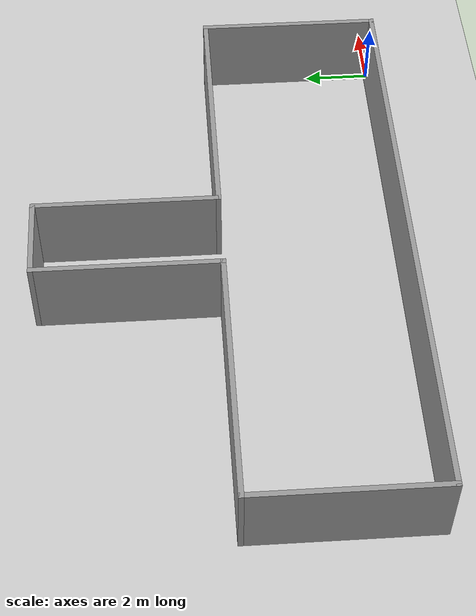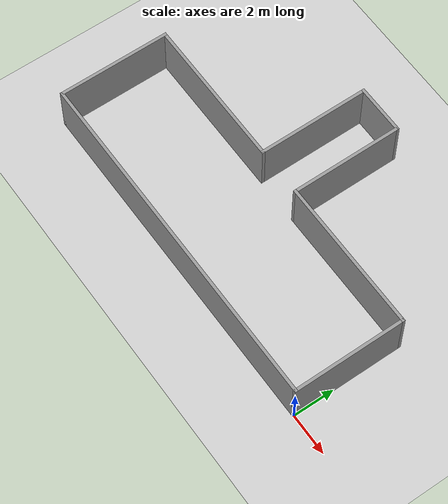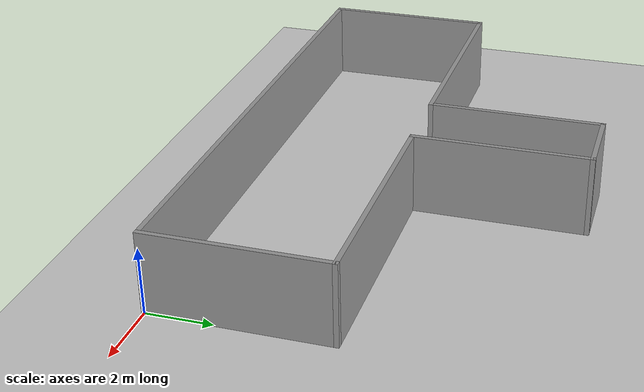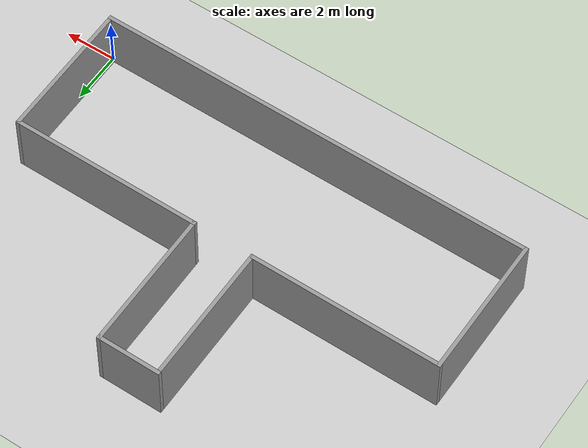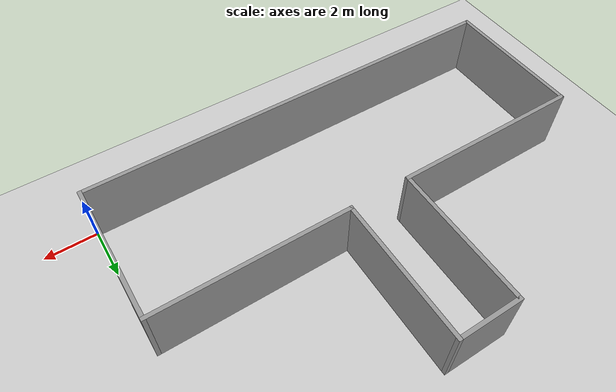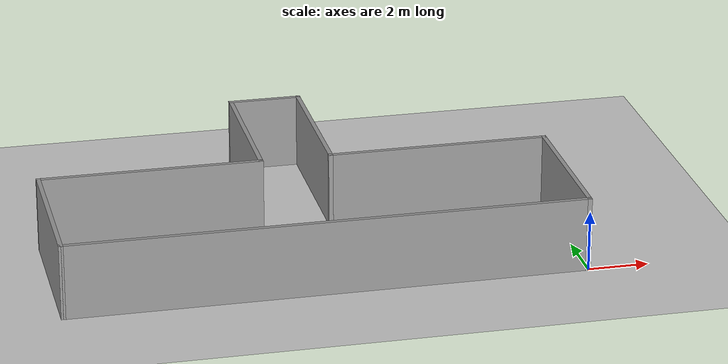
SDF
<sdf version="1.6">
 <world name="default">
  <light name="sun" type="directional">
   <pose>0 0 10 0 -0 0</pose>
   <diffuse>0.8 0.8 0.8 1</diffuse>
   <specular>0.2 0.2 0.2 1</specular>
   <attenuation>
    <range>1000</range>
    <constant>0.9</constant>
    <linear>0.01</linear>
    <quadratic>0.001</quadratic>
   </attenuation>
   <direction>-0.5 0.1 -0.9</direction>
  </light>
  <model name="ground_plane">
   <static>1</static>
   <link name="link">
    <collision name="collision">
     <geometry><plane><normal>0 0 1</normal><size>100 100</size></plane></geometry>
     <surface>
      <contact><collide_bitmask>65535</collide_bitmask></contact>
      <friction><ode><mu>100</mu><mu2>50</mu2></ode></friction>
     </surface>
    </collision>
    <visual name="visual">
     <cast_shadows>0</cast_shadows>
     <geometry><plane><normal>0 0 1</normal><size>100 100</size></plane></geometry>
     <material>
      <script><uri>file://media/materials/scripts/gazebo.material</uri><name>Gazebo/Grey</name></script>
     </material>
    </visual>
   </link>
  </model>
  <gravity>0 0 -9.8</gravity>
  <magnetic_field>6e-06 2.3e-05 -4.2e-05</magnetic_field>
  <atmosphere type="adiabatic"/>
  <physics name="default_physics" default="0" type="ode">
   <max_step_size>0.001</max_step_size>
   <real_time_factor>1</real_time_factor>
   <real_time_update_rate>1000</real_time_update_rate>
  </physics>
  <scene><ambient>0.4 0.4 0.4 1</ambient><background>0.7 0.7 0.7 1</background><shadows>1</shadows></scene>
  <audio><device>default</device></audio>
  <spherical_coordinates>
   <surface_model>EARTH_WGS84</surface_model>
   <latitude_deg>0</latitude_deg>
   <longitude_deg>0</longitude_deg>
   <elevation>0</elevation>
   <heading_deg>0</heading_deg>
  </spherical_coordinates>
  <model name="b4room_model.world">
   <pose>-8.54331 5.36486 0 0 -0 0</pose>
   <link name="Wall_1">
    <collision name="Wall_1_Collision">
     <geometry><box><size>5.5 0.15 2.5</size></box></geometry>
     <pose>0 0 1.25 0 -0 0</pose>
    </collision>
    <visual name="Wall_1_Visual">
     <pose>0 0 1.25 0 -0 0</pose>
     <geometry><box><size>5.5 0.15 2.5</size></box></geometry>
     <material>
      <script><uri>file://media/materials/scripts/gazebo.material</uri><name>Gazebo/Grey</name></script>
      <ambient>1 1 1 1</ambient>
     </material>
     <meta><layer>0</layer></meta>
    </visual>
    <pose>8.50751 -2.675 0 0 -0 1.5708</pose>
   </link>
   <link name="Wall_10">
    <collision name="Wall_10_Collision">
     <geometry><box><size>5.5 0.15 2.5</size></box></geometry>
     <pose>0 0 1.25 0 -0 0</pose>
    </collision>
    <visual name="Wall_10_Visual">
     <pose>0 0 1.25 0 -0 0</pose>
     <geometry><box><size>5.5 0.15 2.5</size></box></geometry>
     <material>
      <script><uri>file://media/materials/scripts/gazebo.material</uri><name>Gazebo/Grey</name></script>
      <ambient>1 1 1 1</ambient>
     </material>
     <meta><layer>0</layer></meta>
    </visual>
    <pose>-8.50751 -2.675 0 0 -0 -1.5708</pose>
   </link>
   <link name="Wall_13">
    <collision name="Wall_13_Collision">
     <geometry><box><size>17.165 0.15 2.5</size></box></geometry>
     <pose>0 0 1.25 0 -0 0</pose>
    </collision>
    <visual name="Wall_13_Visual">
     <pose>0 0 1.25 0 -0 0</pose>
     <geometry><box><size>17.165 0.15 2.5</size></box></geometry>
     <material>
      <script><uri>file://media/materials/scripts/gazebo.material</uri><name>Gazebo/Grey</name></script>
      <ambient>1 1 1 1</ambient>
     </material>
     <meta><layer>0</layer></meta>
    </visual>
    <pose>0 -5.35 0 0 -0 0</pose>
   </link>
   <link name="Wall_2">
    <collision name="Wall_2_Collision">
     <geometry><box><size>7.46502 0.15 2.5</size></box></geometry>
     <pose>0 0 1.25 0 -0 0</pose>
    </collision>
    <visual name="Wall_2_Visual">
     <pose>0 0 1.25 0 -0 0</pose>
     <geometry><box><size>7.46502 0.15 2.5</size></box></geometry>
     <material>
      <script><uri>file://media/materials/scripts/gazebo.material</uri><name>Gazebo/Grey</name></script>
      <ambient>1 1 1 1</ambient>
     </material>
     <meta><layer>0</layer></meta>
    </visual>
    <pose>4.85 0 0 0 -0 3.14159</pose>
   </link>
   <link name="Wall_6">
    <collision name="Wall_6_Collision">
     <geometry><box><size>5.5 0.15 2.5</size></box></geometry>
     <pose>0 0 1.25 0 -0 0</pose>
    </collision>
    <visual name="Wall_6_Visual">
     <pose>0 0 1.25 0 -0 0</pose>
     <geometry><box><size>5.5 0.15 2.5</size></box></geometry>
     <material>
      <script><uri>file://media/materials/scripts/gazebo.material</uri><name>Gazebo/Grey</name></script>
      <ambient>1 1 1 1</ambient>
     </material>
     <meta><layer>0</layer></meta>
    </visual>
    <pose>1.19249 2.675 0 0 -0 1.5708</pose>
   </link>
   <link name="Wall_7">
    <collision name="Wall_7_Collision">
     <geometry><box><size>2.5 0.15 2.5</size></box></geometry>
     <pose>0 0 1.25 0 -0 0</pose>
    </collision>
    <visual name="Wall_7_Visual">
     <pose>0 0 1.25 0 -0 0</pose>
     <geometry><box><size>2.5 0.15 2.5</size></box></geometry>
     <material>
      <script><uri>file://media/materials/scripts/gazebo.material</uri><name>Gazebo/Grey</name></script>
      <ambient>1 1 1 1</ambient>
     </material>
     <meta><layer>0</layer></meta>
    </visual>
    <pose>0.01749 5.35 0 0 -0 3.14159</pose>
   </link>
   <link name="Wall_8">
    <collision name="Wall_8_Collision">
     <geometry><box><size>5.5 0.15 2.5</size></box></geometry>
     <pose>0 0 1.25 0 -0 0</pose>
    </collision>
    <visual name="Wall_8_Visual">
     <pose>0 0 1.25 0 -0 0</pose>
     <geometry><box><size>5.5 0.15 2.5</size></box></geometry>
     <material>
      <script><uri>file://media/materials/scripts/gazebo.material</uri><name>Gazebo/Grey</name></script>
      <ambient>1 1 1 1</ambient>
     </material>
     <meta><layer>0</layer></meta>
    </visual>
    <pose>-1.15751 2.675 0 0 -0 -1.5708</pose>
   </link>
   <link name="Wall_9">
    <collision name="Wall_9_Collision">
     <geometry><box><size>7.5 0.15 2.5</size></box></geometry>
     <pose>0 0 1.25 0 -0 0</pose>
    </collision>
    <visual name="Wall_9_Visual">
     <pose>0 0 1.25 0 -0 0</pose>
     <geometry><box><size>7.5 0.15 2.5</size></box></geometry>
     <material>
      <script><uri>file://media/materials/scripts/gazebo.material</uri><name>Gazebo/Grey</name></script>
      <ambient>1 1 1 1</ambient>
     </material>
     <meta><layer>0</layer></meta>
    </visual>
    <pose>-4.83251 0 0 0 -0 3.14159</pose>
   </link>
   <static>1</static>
  </model>
 </world>
</sdf>
